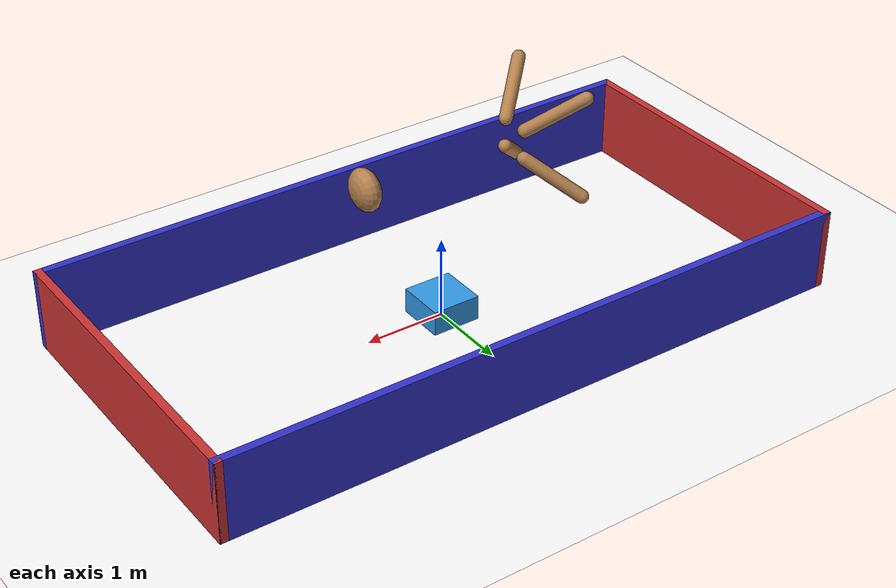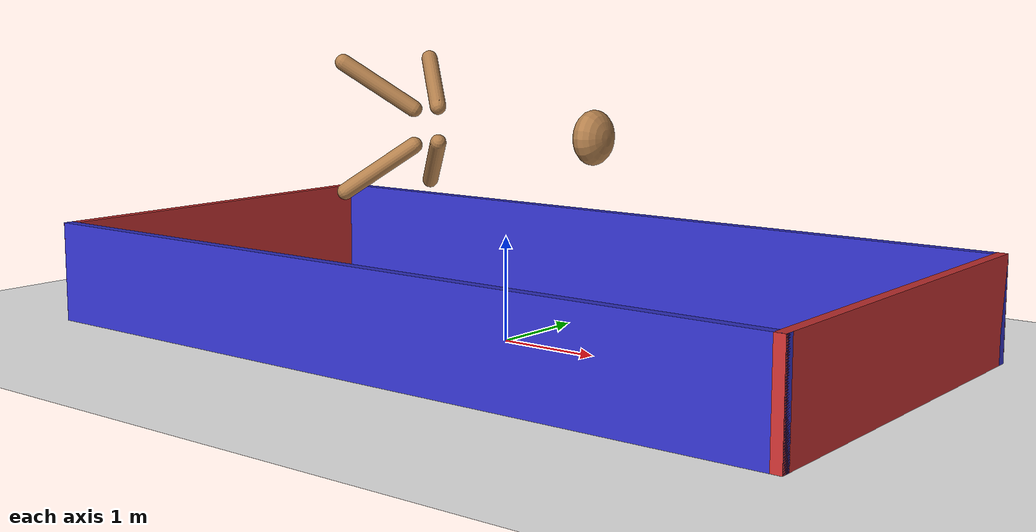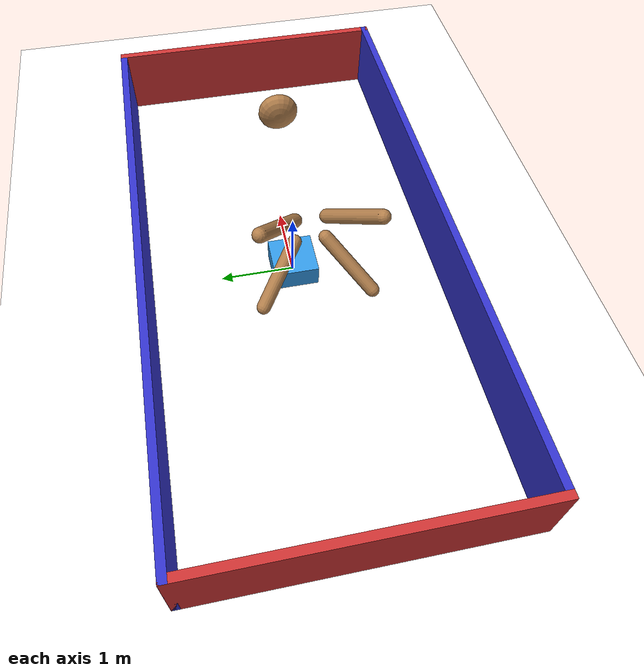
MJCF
<mujoco model="dex-gripper">
  <asset>
    <texture name="skybox" type="skybox" builtin="gradient" rgb1=".2 .3 .4" rgb2="0 0 0" width="800" height="800" mark="random" markrgb="1 1 1"/>
    <texture name="grid" type="2d" builtin="checker" rgb1=".2 .1 .2" rgb2=".3 .2 .3" width="300" height="300" mark="edge" markrgb=".3 .2 .3"/>
    <material name="grid" texture="grid" texrepeat="1 1" texuniform="true" reflectance=".2"/>
    <material name="self" rgba=".7 .5 .3 1"/>
  </asset>

  <visual>
    <headlight ambient=".4 .4 .4" diffuse=".8 .8 .8" specular="0.1 0.1 0.1"/>
    <map znear=".001"/>
    <quality shadowsize="16384"/>
  </visual>

  <compiler angle="degree" coordinate="global" inertiafromgeom="true"/>
  <option integrator="RK4" timestep="0.01"/>

  <default>
    <joint armature="1" damping="1" limited="true"/>
    <geom conaffinity="0" condim="3" density="5.0" friction="1 0.5 0.5" margin="0.01" rgba=".7 .5 .3 1"/>
  </default>

  <worldbody>
    <light cutoff="100" diffuse="1 1 1" dir="0.3 0 -1.3" directional="true" exponent="1" pos="-30 0 130" specular=".1 .1 .1"/>
    <geom conaffinity="1" condim="3" name="floor" pos="0 0 0" rgba="1 1 1 1" size="200 200 .125" type="plane" material="grid"/>

    <body name="0" pos="1 0 2" gravcomp="1">
      <camera name="track" mode="fixed" pos="0 10 5" quat="0 0 0.547 0.892"/>
      <geom name="torso" pos="1 0 2" size="0.25 0.25 0.15" type="ellipsoid" euler="0 90 0"/>
      <joint name="root_x" type="slide" axis="1 0 0" limited="false"/>
      <joint name="root_y" type="slide" axis="0 1 0" limited="false"/>
      <joint name="root_z" type="slide" axis="0 0 1" limited="false"/>

      <body name="1" pos="1 0 2" gravcomp="1">
        <joint axis="0 0.6124 0.6124" name="1_joint" pos="-1 0.177 2.177" range="-30 30" type="hinge" damping="0"/>
        <geom fromto="-1 0.177 2.177   -1.5 0.623 2.623" size="0.08" type="capsule"/>
      </body>

      <body name="2" pos="1 0 2" gravcomp="1">
        <joint axis="0 -0.6124 0.6124" name="2_joint" pos="-1 0.177 1.823" range="-30 30" type="hinge" damping="0"/>
        <geom fromto="-1 0.177 1.823   -1.5 0.623 1.377" size="0.08" type="capsule"/>
      </body>

      <body name="3" pos="1 0 2" gravcomp="1">
        <joint axis="0 -0.6124 -0.6124" name="3_joint" pos="-1 -0.177 1.823" range="-30 30" type="hinge" damping="0"/>
        <geom fromto="-1 -0.177 1.823   -1.5 -0.623 1.377" size="0.08" type="capsule"/>
      </body>

      <body name="4" pos="1 0 2" gravcomp="1">
        <joint axis="0 0.6124 -0.6124" name="4_joint" pos="-1 -0.177 2.177" range="-30 30" type="hinge" damping="0"/>
        <geom fromto="-1 -0.177 2.177   -1.5 -0.623 2.623" size="0.08" type="capsule"/>
      </body>
    </body>

    <body name="box" pos="0 0 0">
      <freejoint name="box_joint"/>
      <geom name="box" type="box" size="0.3 0.3 0.3" rgba="0.2 0.6 0.9 1.0"
            contype="1" conaffinity="1" density="10" friction="2.5 0.1 0.05"/>
    </body>

    <body name="box_walls" pos="0 0 0">
      <geom name="wall_left" type="box" pos="-4.0 0 0.5" size="0.05 2.05 0.5" rgba="0.8 0.2 0.2 1" contype="1" conaffinity="1"/>
      <geom name="wall_right" type="box" pos="4.0 0 0.5" size="0.05 2.05 0.5" rgba="0.8 0.2 0.2 1" contype="1" conaffinity="1"/>
      <geom name="wall_front" type="box" pos="0 2.0 0.5" size="4.05 0.05 0.5" rgba="0.2 0.2 0.8 1" contype="1" conaffinity="1"/>
      <geom name="wall_back" type="box" pos="0 -2.0 0.5" size="4.05 0.05 0.5" rgba="0.2 0.2 0.8 1" contype="1" conaffinity="1"/>
    </body>
  </worldbody>

  <actuator>
    <motor ctrllimited="true" ctrlrange="-1.0 1.0" joint="1_joint" gear="50" name="1_joint"/>
    <motor ctrllimited="true" ctrlrange="-1.0 1.0" joint="2_joint" gear="50" name="2_joint"/>
    <motor ctrllimited="true" ctrlrange="-1.0 1.0" joint="3_joint" gear="50" name="3_joint"/>
    <motor ctrllimited="true" ctrlrange="-1.0 1.0" joint="4_joint" gear="50" name="4_joint"/>
    <motor name="root_x_motor" joint="root_x" gear="0"/>
    <motor name="root_y_motor" joint="root_y" gear="0"/>
    <motor name="root_z_motor" joint="root_z" gear="0"/>
  </actuator>
</mujoco>
